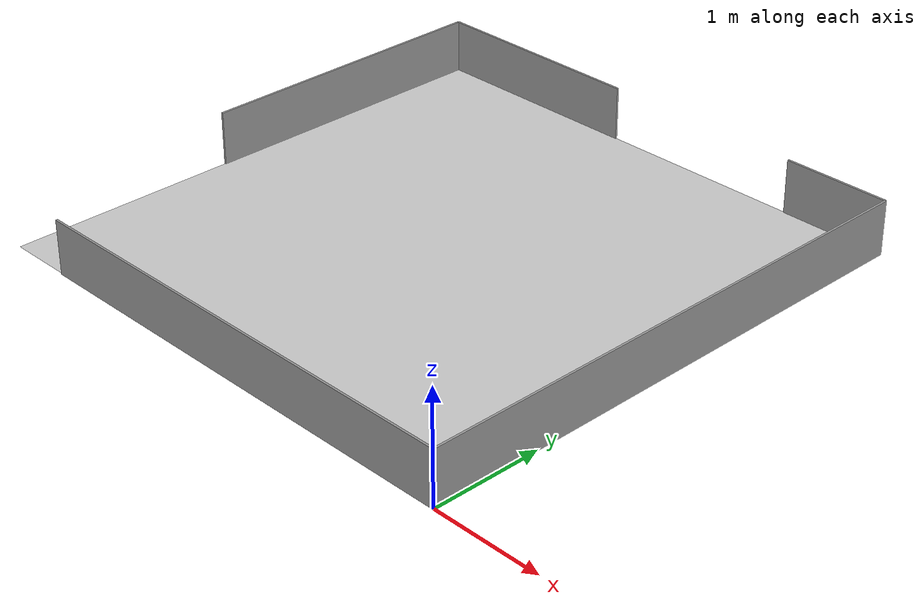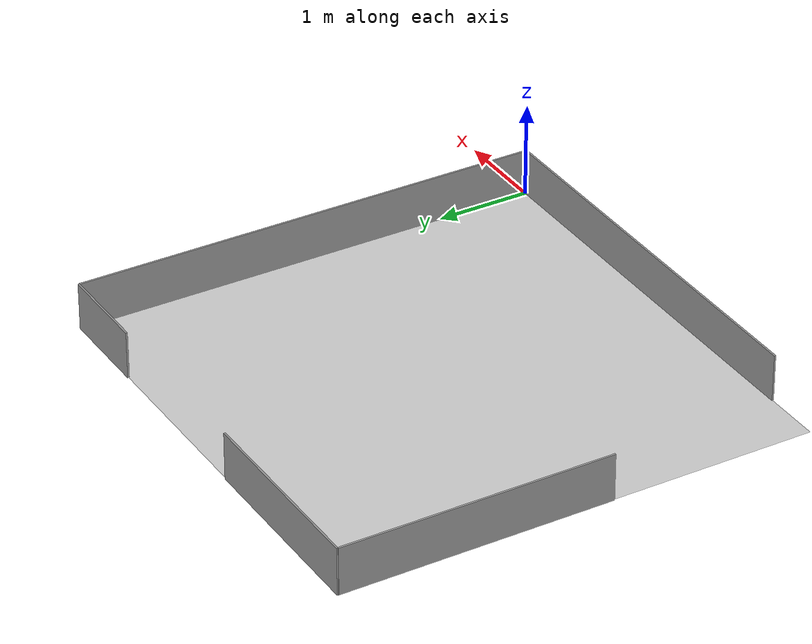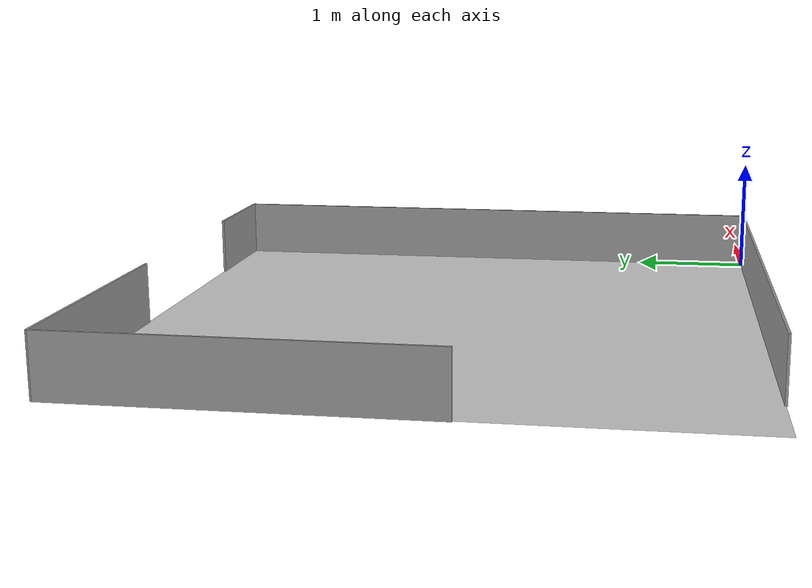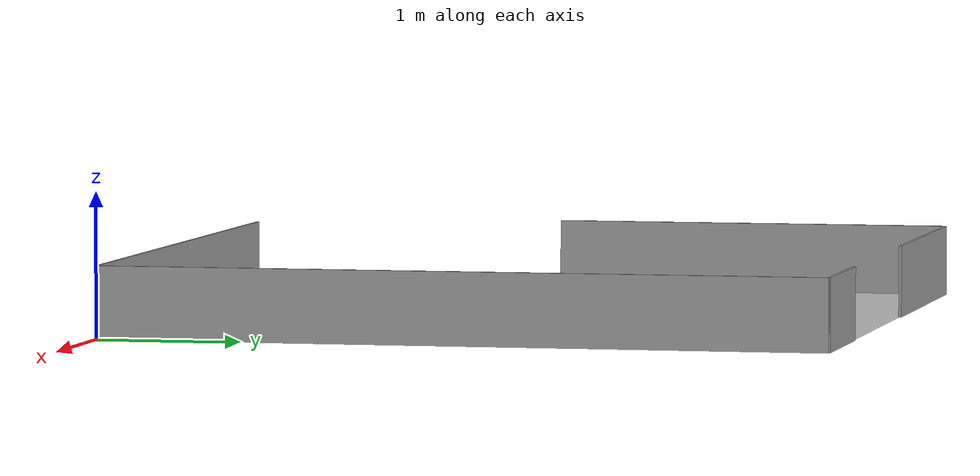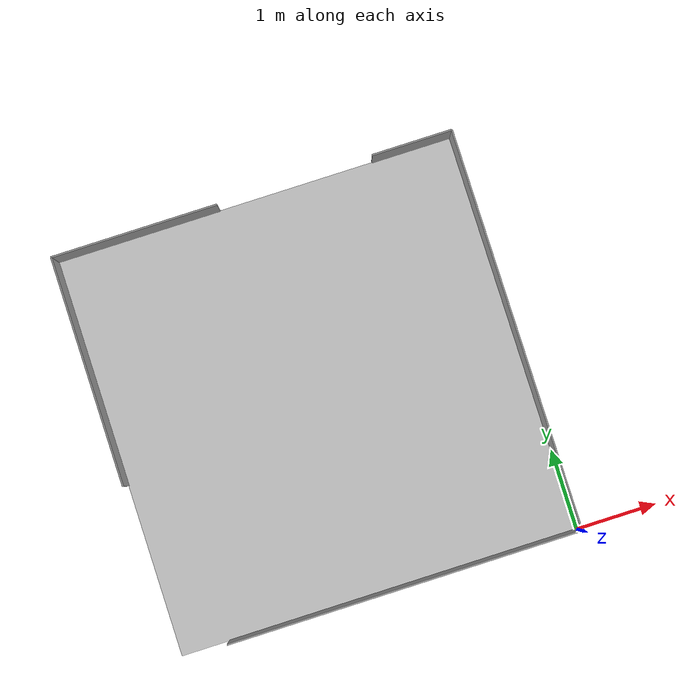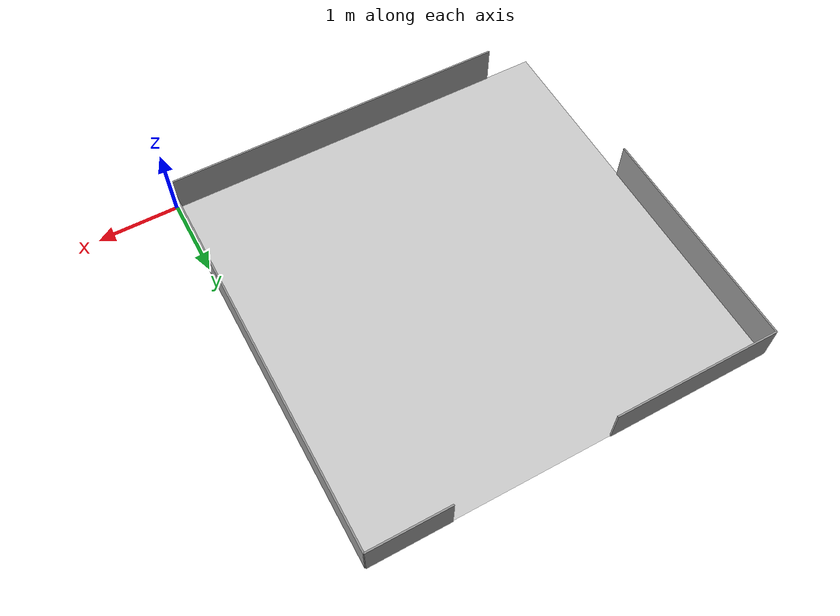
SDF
<?xml version="1.0" ?>
<sdf version="1.5">
  <model name="challenges">
    <pose>0 0 0 0 0 0</pose>
    <static>true</static>
    <link name="field">
      <pose>-2.5 2.5 0.01 0 0 0</pose>
      <collision name="collision">
        <geometry>
          <plane>
            <normal>0 0 1</normal>
            <size>5 5</size>
          </plane>
        </geometry>
        <surface>
          <friction>
            <ode>
              <mu>100</mu>
              <mu2>50</mu2>
            </ode>
          </friction>
        </surface>
      </collision>
      <visual name="carpet">
        <cast_shadows>false</cast_shadows>
        <geometry>
          <plane>
            <normal>0 0 1</normal>
            <size>5 5</size>
          </plane>
        </geometry>
        <material>
          <script>
            <uri>model://challenges/materials/scripts/</uri>
            <uri>model://challenges/materials/textures/</uri>
            <name>Logistics_League_Field/Image</name>
          </script>
        </material>
      </visual>
    </link>

    <link name="wall_left">
      <pose>-5 3.57 0.25 0 0 0</pose>
      <visual name="wall_left-visual">
        <geometry>
          <box>
            <size>.02 2.85 .5</size>
          </box>
        </geometry>
        <cast_shadows>false</cast_shadows>
        <material>
          <script>
            <uri>file://media/materials/scripts/gazebo.material</uri>
            <name>Gazebo/Grey</name>
          </script>
        </material>
      </visual>
      <collision name="wall_left-collision">
        <geometry>
          <box>
            <size>.02 2.85 .5</size>
          </box>
        </geometry>
      </collision>
    </link>

    <link name="wall_bottom">
      <pose>-2.19 0 0.25 0 0 1.5707</pose>
      <visual name="wall_bottom-visual">
        <geometry>
          <box>
            <size>.02 4.4 .5</size>
          </box>
        </geometry>
        <cast_shadows>false</cast_shadows>
        <material>
          <script>
            <uri>file://media/materials/scripts/gazebo.material</uri>
            <name>Gazebo/Grey</name>
          </script>
        </material>
      </visual>
      <collision name="wall_bottom-collision">
        <geometry>
          <box>
            <size>.02 4.4 .5</size>
          </box>
        </geometry>
      </collision>
    </link>

    <link name="wall_right">
      <pose>0 2.5 0.25 0 0 0</pose>
      <visual name="wall_right-visual">
        <geometry>
          <box>
            <size>.02 5 .5</size>
          </box>
        </geometry>
        <cast_shadows>false</cast_shadows>
        <material>
          <script>
            <uri>file://media/materials/scripts/gazebo.material</uri>
            <name>Gazebo/Grey</name>
          </script>
        </material>
      </visual>
      <collision name="wall_right-collision">
        <geometry>
          <box>
            <size>.02 5 .5</size>
          </box>
        </geometry>
      </collision>
    </link>

    <link name="wall_top_left">
      <pose>-3.97 5 0.25 0 0 1.5707</pose>
      <visual name="wall_top_left-visual">
        <geometry>
          <box>
            <size>.02 2.07 .5</size>
          </box>
        </geometry>
        <cast_shadows>false</cast_shadows>
        <material>
          <script>
            <uri>file://media/materials/scripts/gazebo.material</uri>
            <name>Gazebo/Grey</name>
          </script>
        </material>
      </visual>
      <collision name="wall_top_left-collision">
        <geometry>
          <box>
            <size>.02 2.07 .5</size>
          </box>
        </geometry>
      </collision>
    </link>

    <link name="wall_top_right">
      <pose>-0.5 5 0.25 0 0 1.5707</pose>
      <visual name="wall_top_right-visual">
        <geometry>
          <box>
            <size>.02 1 .5</size>
          </box>
        </geometry>
        <cast_shadows>false</cast_shadows>
        <material>
          <script>
            <uri>file://media/materials/scripts/gazebo.material</uri>
            <name>Gazebo/Grey</name>
          </script>
        </material>
      </visual>
      <collision name="wall_top_right-collision">
        <geometry>
          <box>
            <size>.02 1 .5</size>
          </box>
        </geometry>
      </collision>
    </link>

  </model>
</sdf>
